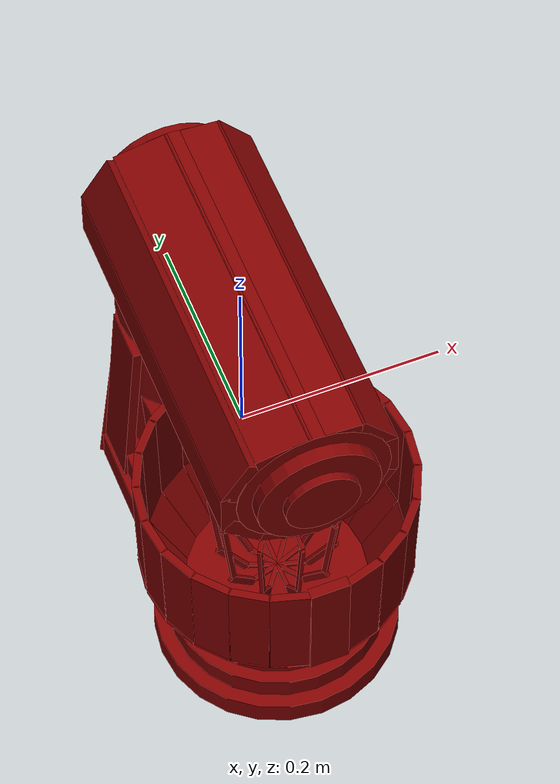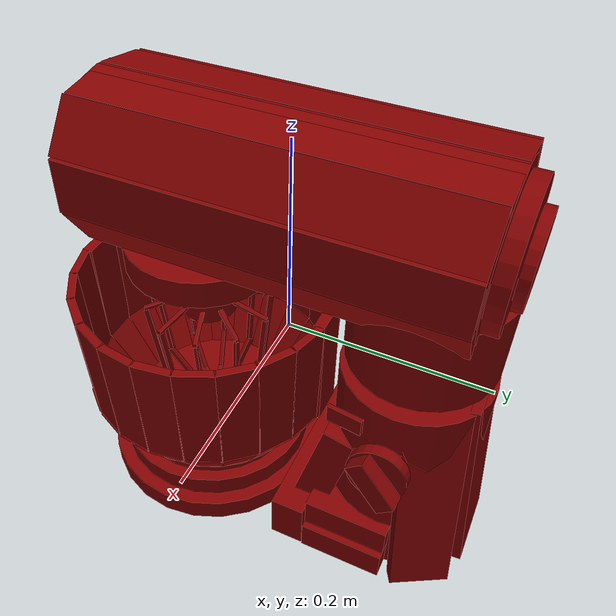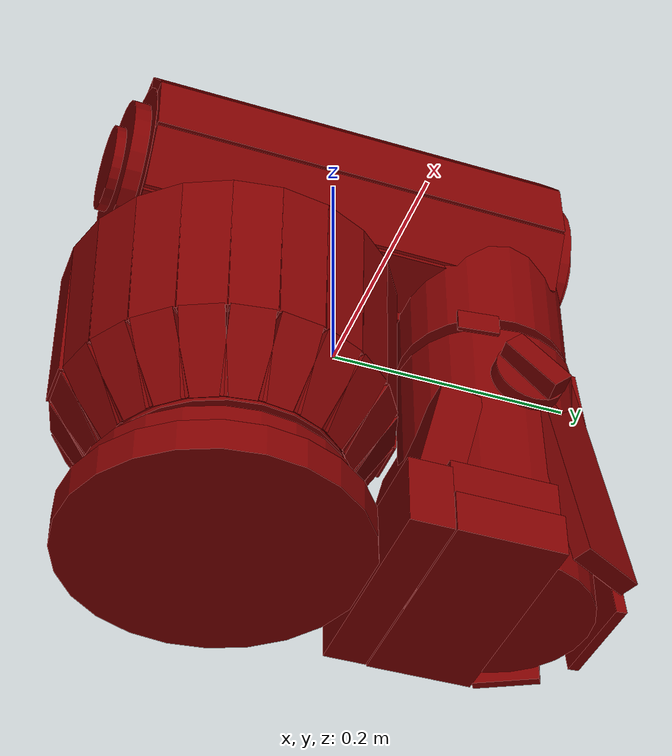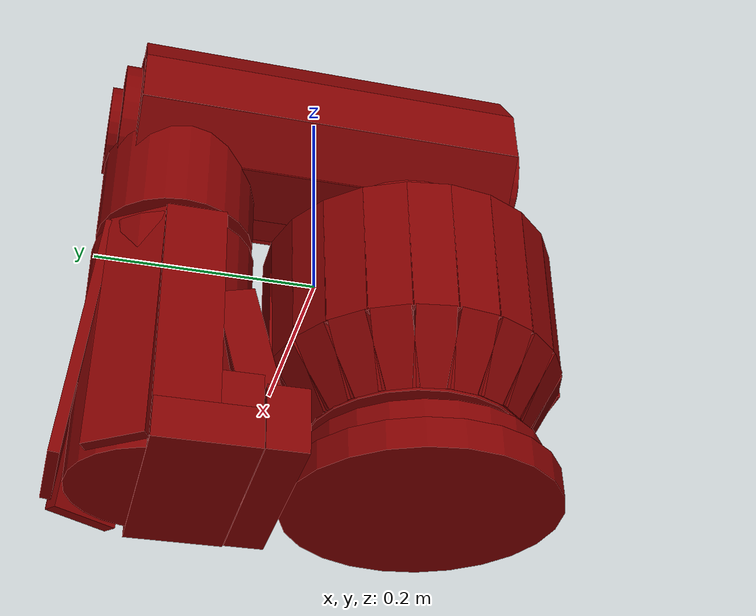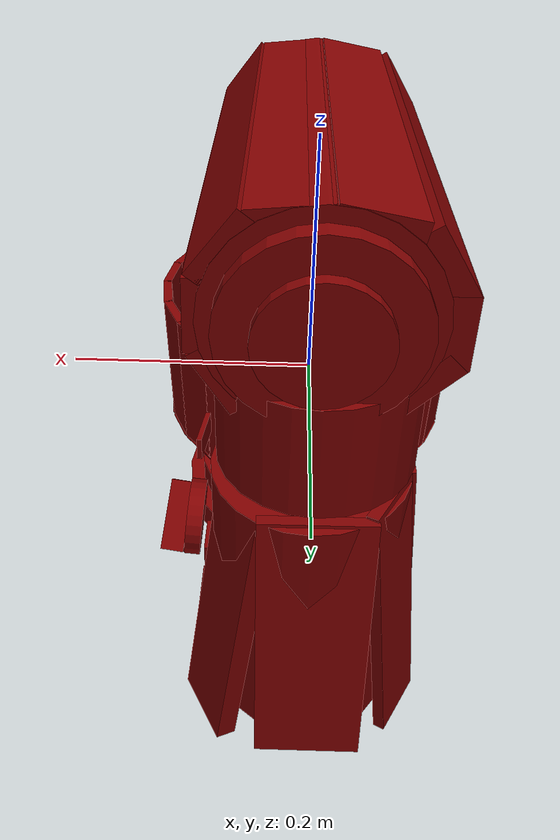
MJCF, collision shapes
<?xml version='1.0' encoding='UTF-8'?>
<mujoco model="model">
  <compiler angle="radian"/>
  <asset>
    <mesh file="visuals/Blender001.obj" name="Blender001_vis"/>
    <mesh file="visuals/Body001.obj" name="Body001_vis"/>
    <mesh file="visuals/Button001.obj" name="Button001_vis"/>
    <mesh file="visuals/Container001.obj" name="Container001_vis"/>
    <mesh file="visuals/Knob001.obj" name="Knob001_vis"/>
    <mesh file="visuals/Lid001.obj" name="Lid001_vis"/>
    <texture file="visuals/T_BC001.png" name="Body001_material" type="2d"/>
    <material name="Body001_material" rgba="1 1 1 1.0" texture="Body001_material" shininess="0.141421377658844" specular="0.7"/>
    <texture file="visuals/T_BC001.png" name="Button001_material" type="2d"/>
    <material name="Button001_material" rgba="1 1 1 1.0" texture="Button001_material" shininess="0.141421377658844" specular="0.7"/>
    <texture file="visuals/T_BC001.png" name="Container001_material" type="2d"/>
    <material name="Container001_material" rgba="1 1 1 1.0" texture="Container001_material" shininess="0.141421377658844" specular="0.7"/>
    <texture file="visuals/T_BC001.png" name="Knob001_material" type="2d"/>
    <material name="Knob001_material" rgba="1 1 1 1.0" texture="Knob001_material" shininess="0.141421377658844" specular="0.7"/>
    <texture file="visuals/T_BC001.png" name="Lid001_material" type="2d"/>
    <material name="Lid001_material" rgba="1 1 1 1.0" texture="Lid001_material" shininess="0.141421377658844" specular="0.7"/>
    <texture file="visuals/T_BC001.png" name="Blender001_material" type="2d"/>
    <material name="Blender001_material" rgba="1 1 1 1.0" texture="Blender001_material" shininess="0.141421377658844" specular="0.7"/>
  </asset>
  <default>
    <default class="visual">
      <geom conaffinity="0" contype="0" group="1" type="mesh"/>
    </default>
    <default class="collision">
      <geom group="0" rgba="0.5 0 0 0.5"/>
    </default>
    <default class="spawn">
      <geom group="0" rgba="1 1 1 0.5" contype="0" conaffinity="0"/>
      <site group="0" rgba="1 1 1 0.5"/>
    </default>
    <default class="region">
      <geom group="1" conaffinity="0" contype="0" rgba="0 1 0 0"/>
    </default>
  </default>
  <worldbody>
    <body>
      <body name="object">
        <geom mesh="Body001_vis" type="mesh" solimp="0.998 0.998 0.001" solref="0.001 1" density="100" friction="0.95 0.3 0.1" class="visual" material="Body001_material"/>
        <geom class="collision" type="box" pos="-0.0008830471779219806 0.10278771817684174 -0.2056986689567566" size="0.09091091901063919 0.04298146069049835 0.017282437533140182" quat="1.0 0.0 0.0 0.0"/>
        <geom class="collision" type="box" pos="-0.0008830471779219806 0.10278771817684174 -0.17185385525226593" size="0.08421126753091812 0.04298141598701477 0.01728244498372078" quat="1.0 0.0 0.0 0.0"/>
        <geom class="collision" type="box" pos="-0.0008830471779219806 0.04156588762998581 -0.1941259652376175" size="0.09006163477897644 0.01740027219057083 0.028225943446159363" quat="1.0 0.0 0.0 0.0"/>
        <geom class="collision" type="box" pos="-0.0008830471779219806 0.06933079659938812 -0.11700505018234253" size="0.06461730599403381 0.017400270327925682 0.05566493421792984" quat="0.9920040369033813 -0.12620609998703003 2.802337699330418e-17 1.0587550700156344e-24"/>
        <geom class="collision" type="cylinder" pos="-0.0004208860918879509 0.13061454892158508 -0.1082337349653244" size="0.07247693091630936 0.11362940073013306" quat="1.0 0.0 0.0 0.0"/>
        <geom class="collision" type="box" pos="-0.0778222382068634 0.1199459359049797 -0.10512194782495499" size="0.004614882171154022 0.026193534955382347 0.11722630262374878" quat="0.9992656111717224 1.1271022736815666e-15 0.03831715136766434 5.148251602804521e-09"/>
        <geom class="collision" type="box" pos="-0.06547414511442184 0.16827261447906494 -0.10637463629245758" size="0.004614882171154022 0.026193533092737198 0.11722629517316818" quat="0.9631377458572388 -0.005944933742284775 0.05217960476875305 -0.2638326585292816"/>
        <geom class="collision" type="box" pos="-0.004581171553581953 0.20225533843040466 -0.1067662462592125" size="0.004614882171154022 0.040954090654850006 0.11456286907196045" quat="0.711906909942627 0.03381841257214546 0.03511016070842743 -0.7005798816680908"/>
        <geom class="collision" type="box" pos="0.05878463387489319 0.17254792153835297 -0.10720666497945786" size="0.00779386144131422 0.029881298542022705 0.11222834885120392" quat="0.25039225816726685 0.07648062705993652 0.02864135056734085 -0.9646937847137451"/>
        <geom class="collision" type="cylinder" pos="-0.0012385009322315454 -0.09077281504869461 -0.20596058666706085" size="0.11881648004055023 0.01291996892541647" quat="1.0 0.0 0.0 0.0"/>
        <geom class="collision" type="cylinder" pos="-0.0012385009322315454 -0.09120842814445496 -0.18051232397556305" size="0.10532929003238678 0.01151470560580492" quat="1.0 0.0 0.0 0.0"/>
        <geom class="collision" type="cylinder" pos="-0.0012385009322315454 -0.09120842814445496 -0.1654304563999176" size="0.09265924990177155 0.0036257957108318806" quat="1.0 0.0 0.0 0.0"/>
        <body name="Button001">
          <joint axis="-1.0 0.0 0.0" pos="0.07669508457183838 0.09103693068027496 -0.005698777735233307" limited="true" name="Button001_joint" range="0.0 0.002" type="slide" damping="1" frictionloss="1" armature=".01" stiffness="0.05"/>
          <geom mesh="Button001_vis" type="mesh" solimp="0.998 0.998 0.001" solref="0.001 1" density="100" friction="0.95 0.3 0.1" class="visual" material="Button001_material"/>
          <geom class="collision" type="box" pos="0.08092193305492401 0.09098409861326218 -0.005507754627615213" size="0.0019145847763866186 0.016794392839074135 0.009193899109959602" quat="0.9981203079223633 0.0 -0.0 -0.06128520146012306"/>
        </body>
        <body name="Container001">
          <joint axis="0.0 0.0 1.0" pos="-1.0986398457646374e-09 -0.0885663703083992 -0.06979335099458694" limited="true" name="Container001_joint" range="0.0 0.05" type="slide" damping="1" frictionloss="1" armature=".01" stiffness="0.05"/>
          <geom mesh="Container001_vis" type="mesh" solimp="0.998 0.998 0.001" solref="0.001 1" density="100" friction="0.95 0.3 0.1" class="visual" material="Container001_material"/>
          <geom class="collision" type="cylinder" pos="0.0 -0.08756542950868607 -0.1511540412902832" size="0.09520088136196136 0.003831111593171954" quat="1.0 0.0 0.0 0.0"/>
          <geom class="collision" type="box" pos="3.055902197957039e-10 -0.21637573838233948 -0.03392329812049866" size="0.019181977957487106 0.005253978539258242 0.0634308010339737" quat="1.0 0.0 0.0 0.0"/>
          <geom class="collision" type="box" pos="1.3193421182222664e-05 -0.19741952419281006 -0.12207989394664764" size="0.016789669170975685 0.005396272987127304 0.033444687724113464" quat="0.9610024094581604 0.27653995156288147 -3.3633448256536824e-17 4.290890239777974e-18"/>
          <geom class="collision" type="box" pos="0.03599955514073372 -0.2112175077199936 -0.03392329812049866" size="0.019181977957487106 0.0037758385296911 0.06335993111133575" quat="0.9897497892379761 0.011554669588804245 0.0016616580542176962 0.14233441650867462"/>
          <geom class="collision" type="box" pos="0.03067055530846119 -0.19302573800086975 -0.12207989394664764" size="0.016789669170975685 0.005396272987127304 0.03344469144940376" quat="0.9512166976928711 0.27372416853904724 0.039363861083984375 0.1367931216955185"/>
          <geom class="collision" type="box" pos="0.06908674538135529 -0.19612401723861694 -0.03392329812049866" size="0.019181977957487106 0.0037758387625217438 0.06335993111133575" quat="0.9594109058380127 0.011200482957065105 0.003289476502686739 0.28177011013031006"/>
          <geom class="collision" type="box" pos="0.05884744971990585 -0.18017110228538513 -0.12207989394664764" size="0.016789669170975685 0.005396272987127304 0.033444687724113464" quat="0.9220590591430664 0.26533353328704834 0.07792602479457855 0.27080026268959045"/>
          <geom class="collision" type="box" pos="0.09657993167638779 -0.17231854796409607 -0.03392329812049866" size="0.019181977957487106 0.0037758387625217438 0.06335993111133575" quat="0.9095331430435181 0.01061819214373827 0.004850304219871759 0.41546741127967834"/>
          <geom class="collision" type="box" pos="0.08226020634174347 -0.15989741683006287 -0.12207989394664764" size="0.016789669170975685 0.005396272987127304 0.033444687724113464" quat="0.8741231560707092 0.25153934955596924 0.11490114033222198 0.39929237961769104"/>
          <geom class="collision" type="box" pos="0.11625086516141891 -0.14173047244548798 -0.03392329812049866" size="0.019181977957487106 0.0037758385296911 0.06335993111133575" quat="0.8411322832107544 0.009819661267101765 0.006312356796115637 0.5407034754753113"/>
          <geom class="collision" type="box" pos="0.09901130199432373 -0.13384786248207092 -0.12207989394664764" size="0.016789669170975685 0.005396272987127304 0.033444687724113464" quat="0.8083851933479309 0.23262245953083038 0.14953629672527313 0.5196528434753418"/>
          <geom class="collision" type="box" pos="0.1265052706003189 -0.1068388968706131 -0.03392329439520836" size="0.019181977957487106 0.0037758387625217438 0.06335993111133575" quat="0.7556012272834778 0.008821138180792332 0.007645844016224146 0.6549278497695923"/>
          <geom class="collision" type="box" pos="0.10774307698011398 -0.10413362830877304 -0.12207989394664764" size="0.016789669170975685 0.005396272987127304 0.033444687724113464" quat="0.726184070110321 0.2089681178331375 0.18112602829933167 0.6294301748275757"/>
          <geom class="collision" type="box" pos="0.1265120506286621 -0.07047165930271149 -0.03392329439520836" size="0.019181977957487106 0.0037758387625217438 0.06335993111133575" quat="0.6546820402145386 0.007642973680049181 0.008823624812066555 0.755814254283905"/>
          <geom class="collision" type="box" pos="0.10774785280227661 -0.07316301017999649 -0.12207989394664764" size="0.016789669170975685 0.005396272987127304 0.03344469144940376" quat="0.629193902015686 0.18105803430080414 0.20902703702449799 0.7263888120651245"/>
          <geom class="collision" type="box" pos="0.11627066135406494 -0.03557625040411949 -0.03392329439520836" size="0.019181977957487106 0.0037758385296911 0.06335993111133575" quat="0.5404298305511475 0.006309155840426683 0.009821707382798195 0.8413081169128418"/>
          <geom class="collision" type="box" pos="0.09902526438236237 -0.04344609007239342 -0.12207989394664764" size="0.016789669170975685 0.005396273452788591 0.033444687724113464" quat="0.5193897485733032 0.1494605839252472 0.2326710820198059 0.8085542321205139"/>
          <geom class="collision" type="box" pos="0.0966111496090889 -0.004980847239494324 -0.03392329439520836" size="0.019181977957487106 0.0037758387625217438 0.06335993111133575" quat="0.4151715040206909 0.004846848547458649 0.010619767010211945 0.9096682667732239"/>
          <geom class="collision" type="box" pos="0.08228222280740738 -0.017391346395015717 -0.12207989394664764" size="0.016789669170975685 0.005396272987127304 0.033444687724113464" quat="0.39900800585746765 0.11481930315494537 0.2515767216682434 0.87425297498703"/>
          <geom class="collision" type="box" pos="0.06912683695554733 0.018834881484508514 -0.03392329439520836" size="0.019181977957487106 0.0037758387625217438 0.06335993111133575" quat="0.28145793080329895 0.0032858329359441996 0.011201548390090466 0.9595025777816772"/>
          <geom class="collision" type="box" pos="0.058875713497400284 0.0028895654249936342 -0.12207989394664764" size="0.016789669170975685 0.005396272987127304 0.033444687724113464" quat="0.27050018310546875 0.0778396725654602 0.2653588056564331 0.9221471548080444"/>
          <geom class="collision" type="box" pos="0.03604528680443764 0.03394072502851486 -0.03392329439520836" size="0.019181977957487106 0.0037758387625217438 0.06335993111133575" quat="0.14201243221759796 0.0016579010989516973 0.01155521534383297 0.9897960424423218"/>
          <geom class="collision" type="box" pos="0.030702801421284676 0.015752896666526794 -0.12207989394664764" size="0.016789669170975685 0.005396272987127304 0.033444687724113464" quat="0.1364835947751999 0.03927477449178696 0.27373671531677246 0.9512612223625183"/>
          <geom class="collision" type="box" pos="4.7639841795898974e-05 0.03911237418651581 -0.03392329439520836" size="0.019185392186045647 0.005266461055725813 0.0634308010339737" quat="1.0 0.0 0.0 0.0"/>
          <geom class="collision" type="box" pos="4.6782148274360225e-05 0.02015615999698639 -0.12207989394664764" size="0.016789669170975685 0.005396272987127304 0.033444687724113464" quat="0.00031270793988369405 8.998542034532875e-05 -0.2765398919582367 -0.9610024094581604"/>
          <geom class="collision" type="box" pos="-0.03594856709241867 0.033930711448192596 -0.03392329439520836" size="0.019181977957487106 0.0037758385296911 0.06335993111133575" quat="0.14265652000904083 0.001665420364588499 -0.011554121971130371 -0.9897034168243408"/>
          <geom class="collision" type="box" pos="-0.03060772456228733 0.01574242115020752 -0.12207989394664764" size="0.016789669170975685 0.005396272987127304 0.03344469144940376" quat="0.13710260391235352 0.039452940225601196 -0.27371111512184143 -0.9511722326278687"/>
          <geom class="collision" type="box" pos="-0.0690259337425232 0.018815673887729645 -0.03392329439520836" size="0.019181977957487106 0.0037758387625217438 0.06335993111133575" quat="0.2820824086666107 0.003293122397735715 -0.01119941659271717 -0.9593191742897034"/>
          <geom class="collision" type="box" pos="-0.058776263147592545 0.002869441406801343 -0.12207989394664764" size="0.016789669170975685 0.005396272987127304 0.033444687724113464" quat="0.27110034227371216 0.0780123770236969 -0.2653081715106964 -0.9219708442687988"/>
          <geom class="collision" type="box" pos="-0.09650362282991409 -0.005007706582546234 -0.03392329439520836" size="0.019181977957487106 0.0037758387625217438 0.06335993111133575" quat="0.4157634973526001 0.0048537589609622955 -0.010616607032716274 -0.9093978404998779"/>
          <geom class="collision" type="box" pos="-0.08217582106590271 -0.0174194797873497 -0.12207989394664764" size="0.016789669170975685 0.005396272987127304 0.033444687724113464" quat="0.39957696199417114 0.11498303711414337 -0.2515019178390503 -0.8739930987358093"/>
          <geom class="collision" type="box" pos="-0.11615465581417084 -0.03560857102274895 -0.03392329439520836" size="0.019181976094841957 0.0037758387625217438 0.06335993111133575" quat="0.5409773588180542 0.0063155461102724075 -0.009817596524953842 -0.8409561514854431"/>
          <geom class="collision" type="box" pos="-0.09890995174646378 -0.04347996786236763 -0.12207989394664764" size="0.016789671033620834 0.005396272987127304 0.03344469144940376" quat="0.5199159383773804 0.14961200952529907 -0.23257377743721008 -0.8082159757614136"/>
          <geom class="collision" type="box" pos="-0.1263863444328308 -0.07050687819719315 -0.03392329439520836" size="0.019181976094841957 0.0037758387625217438 0.06335993111133575" quat="0.6551739573478699 0.007648714352399111 -0.008818643167614937 -0.7553878426551819"/>
          <geom class="collision" type="box" pos="-0.10762238502502441 -0.07319991290569305 -0.12207989394664764" size="0.016789669170975685 0.005396272987127304 0.03344469144940376" quat="0.6296666860580444 0.18119409680366516 -0.20890910923480988 -0.7259790301322937"/>
          <geom class="collision" type="box" pos="-0.1263694316148758 -0.10687415301799774 -0.03392329439520836" size="0.019181977957487106 0.0037758387625217438 0.06335993111133575" quat="0.7560275793075562 0.008826112374663353 -0.007640094496309757 -0.6544356346130371"/>
          <geom class="collision" type="box" pos="-0.10760697722434998 -0.10417056828737259 -0.12207989394664764" size="0.016789669170975685 0.005396273452788591 0.033444687724113464" quat="0.7265937328338623 0.2090861201286316 -0.18099001049995422 -0.628957211971283"/>
          <geom class="collision" type="box" pos="-0.11610525846481323 -0.14176291227340698 -0.03392329439520836" size="0.019181977957487106 0.0037758385296911 0.06335993111133575" quat="0.8414843082427979 0.009823762811720371 -0.00630594789981842 -0.5401554107666016"/>
          <geom class="collision" type="box" pos="-0.09886498749256134 -0.1338818371295929 -0.12207989394664764" size="0.016789669170975685 0.005396272521466017 0.033444687724113464" quat="0.8087235689163208 0.23271983861923218 -0.14938470721244812 -0.5191260576248169"/>
          <geom class="collision" type="box" pos="-0.09642575681209564 -0.17234551906585693 -0.03392329439520836" size="0.019181979820132256 0.0037758385296911 0.06335993111133575" quat="0.9098036885261536 0.010621343739330769 -0.004843381233513355 -0.4148746430873871"/>
          <geom class="collision" type="box" pos="-0.08210493624210358 -0.1599256843328476 -0.12207989394664764" size="0.016789669170975685 0.005396273452788591 0.033444687724113464" quat="0.8743831515312195 0.25161415338516235 -0.11473721265792847 -0.39872270822525024"/>
          <geom class="collision" type="box" pos="-0.0689258798956871 -0.19614332914352417 -0.03392329439520836" size="0.019181977957487106 0.0037758387625217438 0.06335993111133575" quat="0.9595943689346313 0.01120261661708355 -0.0032821721397340298 -0.2811447083950043"/>
          <geom class="collision" type="box" pos="-0.05868517979979515 -0.18019132316112518 -0.12207989394664764" size="0.016789669170975685 0.005396273452788591 0.033444687724113464" quat="0.9222353100776672 0.2653842866420746 -0.07775307446718216 -0.2701992690563202"/>
          <geom class="collision" type="box" pos="-0.035834427922964096 -0.21122756600379944 -0.03392329439520836" size="0.019181977957487106 0.0037758387625217438 0.06335993111133575" quat="0.9898423552513123 0.01155574806034565 -0.0016541274962946773 -0.14168919622898102"/>
          <geom class="collision" type="box" pos="-0.03050382249057293 -0.193036288022995 -0.12207989394664764" size="0.016789669170975685 0.005396272987127304 0.03344469144940376" quat="0.9513057470321655 0.27374956011772156 -0.03918535262346268 -0.1361728310585022"/>
        </body>
        <body name="Knob001">
          <joint axis="-1.0 0.0 0.0" pos="0.0919528529047966 0.12810015678405762 -0.056007809937000275" limited="true" name="Knob001_joint" range="0.0 4.537856055185257" type="hinge" damping="0.05" armature="0.001"/>
          <geom mesh="Knob001_vis" type="mesh" solimp="0.998 0.998 0.001" solref="0.001 1" density="100" friction="0.95 0.3 0.1" class="visual" material="Knob001_material"/>
          <geom class="collision" type="cylinder" pos="0.08516693115234375 0.12782961130142212 -0.05548497661948204" size="0.028630029410123825 0.005836840718984604" quat="0.6730660796165466 -4.468528214118805e-09 -0.739582359790802 -4.468529102297225e-09"/>
          <geom class="collision" type="box" pos="0.0983128696680069 0.1282060742378235 -0.05471491068601608" size="0.008485382422804832 0.010091015137732029 0.026327859610319138" quat="0.9291799068450928 0.36466386914253235 -0.0562005490064621 -0.022056343033909798"/>
        </body>
        <body name="Lid001">
          <joint axis="-1.0 0.0 0.0" pos="2.8258078600629233e-05 0.19589409232139587 0.013518691062927246" limited="true" name="Lid001_joint" range="0.0 1.5707963267948966" type="hinge" damping="1" frictionloss="1" armature=".01" stiffness="0.05"/>
          <geom mesh="Lid001_vis" type="mesh" solimp="0.998 0.998 0.001" solref="0.001 1" density="100" friction="0.95 0.3 0.1" class="visual" material="Lid001_material"/>
          <geom class="collision" type="cylinder" pos="0.0 -0.08951590955257416 0.06816485524177551" size="0.07472942024469376 0.01424634363502264" quat="1.0 0.0 0.0 0.0"/>
          <geom class="collision" type="cylinder" pos="0.0 -2.0133448686010524e-08 0.1498483270406723" size="0.07403885573148727 0.17803466320037842" quat="0.7071067094802856 0.7071068286895752 0.0 0.0"/>
          <geom class="collision" type="box" pos="-0.06733047962188721 -2.4439096080186573e-08 0.18727435171604156" size="0.008463400416076183 0.17721013724803925 0.02514791488647461" quat="0.9614970684051514 -5.496315267811982e-16 0.27481529116630554 3.692386840725703e-08"/>
          <geom class="collision" type="box" pos="-0.07939597964286804 -1.4189092567562511e-08 0.1450451761484146" size="0.008751733228564262 0.17721013724803925 0.025243479758501053" quat="1.0 0.0 0.0 0.0"/>
          <geom class="collision" type="box" pos="-0.06360438466072083 -3.2845740349785046e-08 0.10778410732746124" size="0.008463402278721333 0.17721018195152283 0.025147918611764908" quat="0.924111545085907 -2.5293553652239306e-15 -0.38212287425994873 -5.1341576323693516e-08"/>
          <geom class="collision" type="box" pos="-0.024925507605075836 -2.6583666823398744e-08 0.08135302364826202" size="0.008463401347398758 0.17721018195152283 0.02514791488647461" quat="0.8289874792098999 1.0401674188642573e-08 -0.5592671632766724 -8.718938460106074e-08"/>
          <geom class="collision" type="box" pos="0.021395299583673477 -3.615033827841785e-09 0.08360937237739563" size="0.008463401347398758 0.17721018195152283 0.025147918611764908" quat="0.5975018739700317 7.476496906386881e-14 -0.8018675446510315 -1.0773774761219101e-07"/>
          <geom class="collision" type="box" pos="0.05955358222126961 -1.4888405175383923e-08 0.10878778994083405" size="0.008463401347398758 0.17721018195152283 0.025147918611764908" quat="0.27124133706092834 2.549331663197034e-14 -0.9625113606452942 -1.2932187587466615e-07"/>
          <geom class="collision" type="box" pos="0.07235150039196014 -1.649517855639715e-08 0.15280699729919434" size="0.008463403210043907 0.17721018195152283 0.025147920474410057" quat="0.013781306333839893 -2.980226132607948e-14 0.9999050498008728 1.3434603829409753e-07"/>
          <geom class="collision" type="box" pos="0.05706927552819252 -2.5971095496402086e-08 0.19511158764362335" size="0.008463402278721333 0.17721018195152283 0.025147918611764908" quat="0.3251722455024719 -8.059226436164454e-14 0.9456548094749451 1.2705702090443083e-07"/>
          <geom class="collision" type="box" pos="0.020116006955504417 -5.2222873136997805e-08 0.21448300778865814" size="0.00717508140951395 0.17721018195152283 0.02525954693555832" quat="0.6758987903594971 -3.977951323376472e-13 0.7369944453239441 9.902147724005772e-08"/>
          <geom class="collision" type="box" pos="-0.02909490093588829 -1.1129349886118689e-08 0.212326779961586" size="0.0070573752745985985 0.17721018195152283 0.025420913472771645" quat="0.7715572118759155 -2.3037165708048035e-13 0.6361599564552307 8.547355179189253e-08"/>
          <geom class="collision" type="cylinder" pos="0.0 -0.19632476568222046 0.1498483270406723" size="0.03570923954248428 0.004075794946402311" quat="0.7071067094802856 0.7071068286895752 0.0 0.0"/>
          <geom class="collision" type="cylinder" pos="0.0 -0.1848289966583252 0.1498483270406723" size="0.05936238914728165 0.006775527726858854" quat="0.7071067094802856 0.7071068286895752 0.0 0.0"/>
          <geom class="collision" type="cylinder" pos="0.0 0.18524351716041565 0.1498483419418335" size="0.06379470229148865 0.007281424477696419" quat="0.7071067094802856 0.7071068286895752 0.0 0.0"/>
          <geom class="collision" type="cylinder" pos="0.0 0.19801872968673706 0.1498483419418335" size="0.041398465633392334 0.004725154023617506" quat="0.7071067094802856 0.7071068286895752 0.0 0.0"/>
          <geom class="collision" type="cylinder" pos="-0.002649070229381323 0.1305101364850998 0.06293486803770065" size="0.07060562074184418 0.043314408510923386" quat="1.0 0.0 0.0 0.0"/>
          <body name="Blender001">
            <joint axis="0.0 0.0 1.0" pos="2.4729240976739675e-05 -0.08856616914272308 0.045315101742744446" limited="false" name="Blender001_joint" range="0 360" type="hinge" damping="1" frictionloss="1" armature=".01" stiffness="0.05"/>
            <geom mesh="Blender001_vis" type="mesh" solimp="0.998 0.998 0.001" solref="0.001 1" density="100" friction="0.95 0.3 0.1" class="visual" material="Blender001_material"/>
            <geom class="collision" type="cylinder" pos="0.0 -0.08864181488752365 0.03108813427388668" size="0.011517362669110298 0.014278058893978596" quat="1.0 0.0 0.0 0.0"/>
            <geom class="collision" type="cylinder" pos="0.0 -0.08864181488752365 0.004978269804269075" size="0.029136326164007187 0.011821734718978405" quat="1.0 0.0 0.0 0.0"/>
            <geom class="collision" type="box" pos="0.00020987700554542243 -0.030184321105480194 -0.05030544474720955" size="0.001835870323702693 0.0025987871922552586 0.045582305639982224" quat="0.9985114932060242 -0.05454152822494507 -0.0 0.0"/>
            <geom class="collision" type="box" pos="0.00020987700554542243 -0.04214714840054512 0.0013712906511500478" size="0.002012499375268817 0.0015198097098618746 0.01903446763753891" quat="0.788648784160614 0.6148439645767212 0.0 0.0"/>
            <geom class="collision" type="box" pos="0.00020987700554542243 -0.046271562576293945 -0.11380559206008911" size="0.002012499375268817 0.0035720032174140215 0.02141435816884041" quat="0.9448762536048889 -0.32742759585380554 -0.0 0.0"/>
            <geom class="collision" type="box" pos="0.00020987700554542243 -0.073761947453022 -0.13049165904521942" size="0.002012499375268817 0.001950566889718175 0.013469599187374115" quat="0.742948055267334 -0.6693490743637085 -0.0 0.0"/>
            <geom class="collision" type="box" pos="0.00020987700554542243 -0.10275744646787643 -0.13049165904521942" size="0.002012499375268817 0.001950566889718175 0.013469599187374115" quat="0.742948055267334 0.6693490743637085 0.0 0.0"/>
            <geom class="collision" type="box" pos="0.00020987700554542243 -0.13063709437847137 -0.11380559206008911" size="0.002012499375268817 0.003572002984583378 0.02141435816884041" quat="0.9448762536048889 0.32742762565612793 0.0 0.0"/>
            <geom class="collision" type="box" pos="0.00020987700554542243 -0.13437223434448242 0.0014341246569529176" size="0.002012499375268817 0.0015198097098618746 0.01903446763753891" quat="0.788648784160614 -0.6148439645767212 -0.0 0.0"/>
            <geom class="collision" type="box" pos="0.00020987700554542243 -0.14679063856601715 -0.05030544474720955" size="0.001835870323702693 0.0025987871922552586 0.045582305639982224" quat="0.9985114932060242 0.05454152822494507 0.0 0.0"/>
            <geom class="collision" type="box" pos="-0.034204188734292984 -0.13555052876472473 -0.05030544474720955" size="0.001835870323702693 0.0025987871922552586 0.045582301914691925" quat="0.9491671919822693 0.0518459752202034 -0.016933614388108253 -0.3100111484527588"/>
            <geom class="collision" type="box" pos="-0.026874089613556862 -0.12552623450756073 0.001434125006198883" size="0.0020124991424381733 0.0015198097098618746 0.01903446763753891" quat="0.7496753931045532 -0.584459662437439 0.19089266657829285 -0.24485443532466888"/>
            <geom class="collision" type="box" pos="-0.024669382721185684 -0.12251117825508118 -0.11380559206008911" size="0.0020124996080994606 0.003572002984583378 0.02141435816884041" quat="0.8981825113296509 0.31124675273895264 -0.10165751725435257 -0.29335883259773254"/>
            <geom class="collision" type="box" pos="-0.008213125169277191 -0.10000637918710709 -0.13049165904521942" size="0.002012499375268817 0.001950566889718175 0.013469599187374115" quat="0.7062328457832336 0.6362714767456055 -0.20781520009040833 -0.23066556453704834"/>
            <geom class="collision" type="box" pos="0.008901777677237988 -0.07660084217786789 -0.13049165904521942" size="0.002012499375268817 0.001950566889718175 0.013469599187374115" quat="0.7062328457832336 -0.6362714767456055 0.20781520009040833 -0.23066556453704834"/>
            <geom class="collision" type="box" pos="0.02512826956808567 -0.05441025644540787 -0.11380559206008911" size="0.0020124991424381733 0.003572002984583378 0.02141435816884041" quat="0.8981824517250061 -0.3112468719482422 0.10165760666131973 -0.2933588922023773"/>
            <geom class="collision" type="box" pos="0.02756275050342083 -0.05108097940683365 0.0013712942600250244" size="0.0020124991424381733 0.0015198097098618746 0.01903446763753891" quat="0.7496753931045532 0.584459662437439 -0.19089266657829285 -0.24485443532466888"/>
            <geom class="collision" type="box" pos="0.03453512117266655 -0.041424430906772614 -0.05030544474720955" size="0.001835870323702693 0.0025987871922552586 0.045582301914691925" quat="0.9491671919822693 -0.0518459752202034 0.016933614388108253 -0.3100111484527588"/>
            <geom class="collision" type="box" pos="0.055759429931640625 -0.0707814171910286 -0.05030544474720955" size="0.0018358704401180148 0.002598786959424615 0.045582301914691925" quat="0.8061672449111938 -0.04403495788574219 0.03218192979693413 -0.5891686081886292"/>
            <geom class="collision" type="box" pos="0.04436159506440163 -0.07441440969705582 0.0013712942600250244" size="0.002012499375268817 0.0015198095934465528 0.01903446950018406" quat="0.6367306709289551 0.4964059293270111 -0.3627866506576538 -0.465339720249176"/>
            <geom class="collision" type="box" pos="0.04043197259306908 -0.07566694915294647 -0.11380559206008911" size="0.002012499375268817 0.003572002984583378 0.02141435816884041" quat="0.76286381483078 -0.2643549144268036 0.19319762289524078 -0.5575212240219116"/>
            <geom class="collision" type="box" pos="0.014239933341741562 -0.08401548862457275 -0.13049165904521942" size="0.002012499375268817 0.001950566889718175 0.013469599187374115" quat="0.5998331904411316 -0.5404117703437805 0.3949473202228546 -0.4383741021156311"/>
            <geom class="collision" type="box" pos="-0.013386139646172523 -0.09282112121582031 -0.13049165904521942" size="0.002012499375268817 0.001950566889718175 0.013469599187374115" quat="0.5998331904411316 0.5404117703437805 -0.3949473202228546 -0.4383741021156311"/>
            <geom class="collision" type="box" pos="-0.03994905576109886 -0.10128787159919739 -0.11380559206008911" size="0.002012499375268817 0.0035720032174140215 0.02141435816884041" quat="0.7628638744354248 0.2643548548221588 -0.1931975781917572 -0.5575212240219116"/>
            <geom class="collision" type="box" pos="-0.04350779205560684 -0.10242220014333725 0.001434125006198883" size="0.002012499375268817 0.0015198095934465528 0.01903446950018406" quat="0.6367306709289551 -0.4964059293270111 0.3627866506576538 -0.465339720249176"/>
            <geom class="collision" type="box" pos="-0.055339690297842026 -0.10619354248046875 -0.05030544474720955" size="0.0018358704401180148 0.002598786959424615 0.045582301914691925" quat="0.8061672449111938 0.04403495788574219 -0.03218192979693413 -0.5891686081886292"/>
            <geom class="collision" type="box" pos="-0.05529047176241875 -0.07062774151563644 -0.05030544474720955" size="0.001835870323702693 0.0025987871922552586 0.045582301914691925" quat="0.5880523920059204 0.032120950520038605 -0.04407944902777672 -0.8069818019866943"/>
            <geom class="collision" type="box" pos="-0.043469060212373734 -0.07443181425333023 0.001434125006198883" size="0.002012499375268817 0.0015198095934465528 0.01903446950018406" quat="0.464458167552948 -0.36209937930107117 0.49690747261047363 -0.6373739838600159"/>
            <geom class="collision" type="box" pos="-0.03991347923874855 -0.07557597756385803 -0.11380559206008911" size="0.002012499375268817 0.003572002751752734 0.02141435816884041" quat="0.5564647316932678 0.1928316354751587 -0.26462212204933167 -0.7636348009109497"/>
            <geom class="collision" type="box" pos="-0.01337409671396017 -0.08411622792482376 -0.13049165904521942" size="0.002012499375268817 0.001950566889718175 0.01346959825605154" quat="0.4375436305999756 0.39419907331466675 -0.5409577488899231 -0.6004393100738525"/>
            <geom class="collision" type="box" pos="0.014227500185370445 -0.09299828857183456 -0.13049165904521942" size="0.002012499375268817 0.001950566889718175 0.01346959825605154" quat="0.4375436305999756 -0.39419907331466675 0.5409577488899231 -0.6004393100738525"/>
            <geom class="collision" type="box" pos="0.04039632901549339 -0.10141928493976593 -0.11380559206008911" size="0.002012499375268817 0.003572002984583378 0.02141435816884041" quat="0.5564650297164917 -0.1928316056728363 0.2646220326423645 -0.7636346220970154"/>
            <geom class="collision" type="box" pos="0.04432247206568718 -0.10268270969390869 0.0013712942600250244" size="0.002012499375268817 0.0015198095934465528 0.01903446950018406" quat="0.464458167552948 0.36209937930107117 -0.49690747261047363 -0.6373739838600159"/>
            <geom class="collision" type="box" pos="0.05571020767092705 -0.1063472181558609 -0.05030544474720955" size="0.001835870323702693 0.0025987871922552586 0.045582301914691925" quat="0.5880523920059204 -0.032120950520038605 0.04407944902777672 -0.8069818019866943"/>
            <geom class="collision" type="box" pos="0.03439188003540039 -0.13548603653907776 -0.05030544474720955" size="0.001835870323702693 0.0025987871922552586 0.045582301914691925" quat="0.31089919805526733 -0.016982123255729675 0.05183011293411255 -0.948876678943634"/>
            <geom class="collision" type="box" pos="0.027451105415821075 -0.12584273517131805 0.0013712942600250244" size="0.002012499375268817 0.0015198095934465528 0.01903446763753891" quat="0.2455557882785797 0.1914394199848175 -0.5842807292938232 -0.7494460344314575"/>
            <geom class="collision" type="box" pos="0.025010403245687485 -0.12251800298690796 -0.11380559206008911" size="0.002012499375268817 0.003572002984583378 0.02141435816884041" quat="0.2941991686820984 -0.10194873064756393 0.31115156412124634 -0.897907555103302"/>
            <geom class="collision" type="box" pos="0.008923999033868313 -0.10035783052444458 -0.13049165904521942" size="0.002012499375268817 0.001950566889718175 0.013469599187374115" quat="0.23132625222206116 -0.2084103226661682 0.6360765695571899 -0.7060168981552124"/>
            <geom class="collision" type="box" pos="-0.008234677836298943 -0.07698436826467514 -0.13049165904521942" size="0.002012499375268817 0.001950566889718175 0.013469599187374115" quat="0.23132625222206116 0.2084103226661682 -0.6360765695571899 -0.7060168981552124"/>
            <geom class="collision" type="box" pos="-0.02473302185535431 -0.054510392248630524 -0.11380559206008911" size="0.002012499375268817 0.003572002984583378 0.02141435816884041" quat="0.2941991984844208 0.10194870084524155 -0.31115150451660156 -0.8979076147079468"/>
            <geom class="collision" type="box" pos="-0.026943370699882507 -0.05149947851896286 0.001434125006198883" size="0.002012499375268817 0.0015198095934465528 0.01903446763753891" quat="0.2455557882785797 -0.1914394199848175 0.5842807292938232 -0.7494460344314575"/>
            <geom class="collision" type="box" pos="-0.03429220989346504 -0.04148891940712929 -0.05030544474720955" size="0.001835870323702693 0.0025987871922552586 0.045582301914691925" quat="0.31089919805526733 0.016982123255729675 -0.05183011293411255 -0.948876678943634"/>
          </body>
        </body>
        <geom class="region" name="reg_main" type="box" pos="-1.142546534538269e-05 0.0 0.0" size="0.12153057754039764 0.22226998209953308 0.22392447292804718"/>
      </body>
    </body>
  </worldbody>
  <actuator>
    <motor name="Button001_joint_actuator" joint="Button001_joint" gear="0.5"/>
    <motor name="Container001_joint_actuator" joint="Container001_joint" gear="50"/>
    <motor name="Knob001_joint_actuator" joint="Knob001_joint" gear="10"/>
    <motor name="Lid001_joint_actuator" joint="Lid001_joint" gear="50"/>
    <motor name="Blender001_joint_actuator" joint="Blender001_joint" gear="10"/>
  </actuator>
</mujoco>
